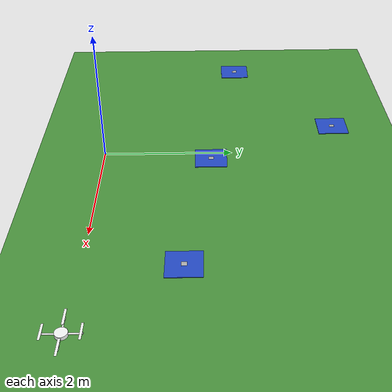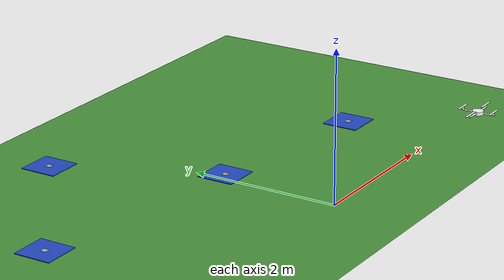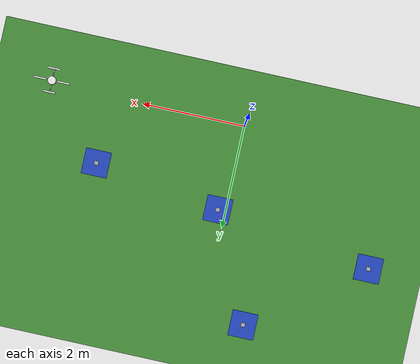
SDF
<sdf version="1.7">
 <world name="mrsim">
  <model name="ground_plane">
   <static>1</static>
   <link name="link">
    <collision name="collision">
     <geometry><plane><normal>0 0 1</normal><size>5000 5000</size></plane></geometry>
     <surface><friction><ode><mu>1</mu><mu2>1</mu2></ode></friction></surface>
    </collision>
    <visual name="grass">
     <cast_shadows>0</cast_shadows>
     <geometry><plane><normal>0 0 1</normal><size>5000 5000</size></plane></geometry>
     <material>
      <script><uri>file://media/materials/scripts/gazebo.material</uri><name>Gazebo/Grass</name></script>
     </material>
    </visual>
   </link>
  </model>
  <model name="quad2">
   <link name="base">
    <inertial>
     <mass>1</mass>
     <inertia><ixx>0.015</ixx><ixy>0</ixy><ixz>0</ixz><iyy>0.015</iyy><iyz>0</iyz><izz>0.007</izz></inertia>
    </inertial>
    <collision name="base">
     <geometry><cylinder><radius>0.1</radius><length>0.05</length></cylinder></geometry>
    </collision>
    <collision name="land_1">
     <pose>0.1 0 0 0 -0 0</pose>
     <geometry><sphere><radius>0.03</radius></sphere></geometry>
    </collision>
    <collision name="land_2">
     <pose>-0.05 0.086 0 0 -0 0</pose>
     <geometry><sphere><radius>0.03</radius></sphere></geometry>
    </collision>
    <collision name="land_3">
     <pose>-0.05 -0.086 0 0 -0 0</pose>
     <geometry><sphere><radius>0.03</radius></sphere></geometry>
    </collision>
    <visual name="body">
     <geometry><cylinder><radius>0.08</radius><length>0.05</length></cylinder></geometry>
     <material><ambient>1 0.6 0.4 1</ambient><diffuse>1 1 1 1</diffuse></material>
    </visual>
    <visual name="arm-1">
     <pose>0.125 0 0 3.14159 1.57079 3.14159</pose>
     <geometry><cylinder><radius>0.01</radius><length>0.25</length></cylinder></geometry>
     <material><ambient>1 0.4 0.4 1</ambient><diffuse>1 1 1 1</diffuse></material>
    </visual>
    <visual name="arm-2">
     <pose>0 0.125 0 3.14159 1.57079 -1.57079</pose>
     <geometry><cylinder><radius>0.01</radius><length>0.25</length></cylinder></geometry>
     <material><ambient>0.6 0.6 0.6 1</ambient><diffuse>1 1 1 1</diffuse></material>
    </visual>
    <visual name="arm-3">
     <pose>-0.125 0 0 3.14159 1.57079 3.14159</pose>
     <geometry><cylinder><radius>0.01</radius><length>0.25</length></cylinder></geometry>
     <material><ambient>0.6 0.6 0.6 1</ambient><diffuse>1 1 1 1</diffuse></material>
    </visual>
    <visual name="arm-4">
     <pose>0 -0.125 0 3.14159 1.57079 -1.57079</pose>
     <geometry><cylinder><radius>0.01</radius><length>0.25</length></cylinder></geometry>
     <material><ambient>0.6 0.6 0.6 1</ambient><diffuse>1 1 1 1</diffuse></material>
    </visual>
   </link>
   <frame name="rotor-1::__model__" attached_to="rotor-1::propeller">
    <pose relative_to="__model__">0.23 0 0 0 -0 0</pose>
   </frame>
   <link name="rotor-1::propeller">
    <inertial>
     <mass>0.07</mass>
     <inertia><ixx>4e-05</ixx><ixy>0</ixy><ixz>0</ixz><iyy>4e-05</iyy><iyz>0</iyz><izz>8e-05</izz></inertia>
    </inertial>
    <collision name="collision">
     <pose>0 0 0.04 0 -0 0</pose>
     <geometry><cylinder><radius>0.127</radius><length>0.002</length></cylinder></geometry>
    </collision>
    <visual name="motor">
     <pose>0 0 0.015 0 -0 0</pose>
     <geometry><cylinder><radius>0.015</radius><length>0.03</length></cylinder></geometry>
     <material><ambient>0.1 0.1 0.1 1</ambient><diffuse>1 1 1 1</diffuse></material>
    </visual>
    <visual name="axle">
     <pose>0 0 0.035 0 -0 0</pose>
     <geometry><cylinder><radius>0.002</radius><length>0.01</length></cylinder></geometry>
     <material><ambient>0.1 0.1 0.1 1</ambient><diffuse>1 1 1 1</diffuse></material>
    </visual>
    <visual name="blade">
     <pose>0 0 0.04 0 -0 0</pose>
     <geometry><box><size>0.25 0.03 0.002</size></box></geometry>
     <material><ambient>0.1 0.1 0.1 1</ambient><diffuse>1 1 1 1</diffuse></material>
    </visual>
    <pose relative_to="rotor-1::__model__">0 0 0 0 -0 0</pose>
   </link>
   <joint name="rotor-1" type="revolute">
    <parent>base</parent>
    <child>rotor-1::propeller</child>
    <axis>
     <xyz>0 0 1</xyz>
     <limit><lower>-1e+16</lower><upper>1e+16</upper></limit>
     <dynamics><spring_reference>0</spring_reference><spring_stiffness>0</spring_stiffness></dynamics>
    </axis>
   </joint>
   <frame name="rotor-2::__model__" attached_to="rotor-2::propeller">
    <pose relative_to="__model__">0 0.23 0 0 -0 0</pose>
   </frame>
   <link name="rotor-2::propeller">
    <inertial>
     <mass>0.07</mass>
     <inertia><ixx>4e-05</ixx><ixy>0</ixy><ixz>0</ixz><iyy>4e-05</iyy><iyz>0</iyz><izz>8e-05</izz></inertia>
    </inertial>
    <collision name="collision">
     <pose>0 0 0.04 0 -0 0</pose>
     <geometry><cylinder><radius>0.127</radius><length>0.002</length></cylinder></geometry>
    </collision>
    <visual name="motor">
     <pose>0 0 0.015 0 -0 0</pose>
     <geometry><cylinder><radius>0.015</radius><length>0.03</length></cylinder></geometry>
     <material><ambient>0.1 0.1 0.1 1</ambient><diffuse>1 1 1 1</diffuse></material>
    </visual>
    <visual name="axle">
     <pose>0 0 0.035 0 -0 0</pose>
     <geometry><cylinder><radius>0.002</radius><length>0.01</length></cylinder></geometry>
     <material><ambient>0.1 0.1 0.1 1</ambient><diffuse>1 1 1 1</diffuse></material>
    </visual>
    <visual name="blade">
     <pose>0 0 0.04 0 -0 0</pose>
     <geometry><box><size>0.25 0.03 0.002</size></box></geometry>
     <material><ambient>0.1 0.1 0.1 1</ambient><diffuse>1 1 1 1</diffuse></material>
    </visual>
    <pose relative_to="rotor-2::__model__">0 0 0 0 -0 0</pose>
   </link>
   <joint name="rotor-2" type="revolute">
    <parent>base</parent>
    <child>rotor-2::propeller</child>
    <axis>
     <xyz>0 0 1</xyz>
     <limit><lower>-1e+16</lower><upper>1e+16</upper></limit>
     <dynamics><spring_reference>0</spring_reference><spring_stiffness>0</spring_stiffness></dynamics>
    </axis>
   </joint>
   <frame name="rotor-3::__model__" attached_to="rotor-3::propeller">
    <pose relative_to="__model__">-0.23 0 0 0 -0 0</pose>
   </frame>
   <link name="rotor-3::propeller">
    <inertial>
     <mass>0.07</mass>
     <inertia><ixx>4e-05</ixx><ixy>0</ixy><ixz>0</ixz><iyy>4e-05</iyy><iyz>0</iyz><izz>8e-05</izz></inertia>
    </inertial>
    <collision name="collision">
     <pose>0 0 0.04 0 -0 0</pose>
     <geometry><cylinder><radius>0.127</radius><length>0.002</length></cylinder></geometry>
    </collision>
    <visual name="motor">
     <pose>0 0 0.015 0 -0 0</pose>
     <geometry><cylinder><radius>0.015</radius><length>0.03</length></cylinder></geometry>
     <material><ambient>0.1 0.1 0.1 1</ambient><diffuse>1 1 1 1</diffuse></material>
    </visual>
    <visual name="axle">
     <pose>0 0 0.035 0 -0 0</pose>
     <geometry><cylinder><radius>0.002</radius><length>0.01</length></cylinder></geometry>
     <material><ambient>0.1 0.1 0.1 1</ambient><diffuse>1 1 1 1</diffuse></material>
    </visual>
    <visual name="blade">
     <pose>0 0 0.04 0 -0 0</pose>
     <geometry><box><size>0.25 0.03 0.002</size></box></geometry>
     <material><ambient>0.1 0.1 0.1 1</ambient><diffuse>1 1 1 1</diffuse></material>
    </visual>
    <pose relative_to="rotor-3::__model__">0 0 0 0 -0 0</pose>
   </link>
   <joint name="rotor-3" type="revolute">
    <parent>base</parent>
    <child>rotor-3::propeller</child>
    <axis>
     <xyz>0 0 1</xyz>
     <limit><lower>-1e+16</lower><upper>1e+16</upper></limit>
     <dynamics><spring_reference>0</spring_reference><spring_stiffness>0</spring_stiffness></dynamics>
    </axis>
   </joint>
   <frame name="rotor-4::__model__" attached_to="rotor-4::propeller">
    <pose relative_to="__model__">0 -0.23 0 0 -0 0</pose>
   </frame>
   <link name="rotor-4::propeller">
    <inertial>
     <mass>0.07</mass>
     <inertia><ixx>4e-05</ixx><ixy>0</ixy><ixz>0</ixz><iyy>4e-05</iyy><iyz>0</iyz><izz>8e-05</izz></inertia>
    </inertial>
    <collision name="collision">
     <pose>0 0 0.04 0 -0 0</pose>
     <geometry><cylinder><radius>0.127</radius><length>0.002</length></cylinder></geometry>
    </collision>
    <visual name="motor">
     <pose>0 0 0.015 0 -0 0</pose>
     <geometry><cylinder><radius>0.015</radius><length>0.03</length></cylinder></geometry>
     <material><ambient>0.1 0.1 0.1 1</ambient><diffuse>1 1 1 1</diffuse></material>
    </visual>
    <visual name="axle">
     <pose>0 0 0.035 0 -0 0</pose>
     <geometry><cylinder><radius>0.002</radius><length>0.01</length></cylinder></geometry>
     <material><ambient>0.1 0.1 0.1 1</ambient><diffuse>1 1 1 1</diffuse></material>
    </visual>
    <visual name="blade">
     <pose>0 0 0.04 0 -0 0</pose>
     <geometry><box><size>0.25 0.03 0.002</size></box></geometry>
     <material><ambient>0.1 0.1 0.1 1</ambient><diffuse>1 1 1 1</diffuse></material>
    </visual>
    <pose relative_to="rotor-4::__model__">0 0 0 0 -0 0</pose>
   </link>
   <joint name="rotor-4" type="revolute">
    <parent>base</parent>
    <child>rotor-4::propeller</child>
    <axis>
     <xyz>0 0 1</xyz>
     <limit><lower>-1e+16</lower><upper>1e+16</upper></limit>
     <dynamics><spring_reference>0</spring_reference><spring_stiffness>0</spring_stiffness></dynamics>
    </axis>
   </joint>
   <link name="down_camera_link">
    <pose>0 0 0 3.14159 1.57079 3.14159</pose>
    <inertial>
     <mass>0.001</mass>
     <inertia>
      <ixx>3.2061e-05</ixx>
      <ixy>-1.169e-08</ixy>
      <ixz>-4.2601e-10</ixz>
      <iyy>3.0815e-05</iyy>
      <iyz>5.2182e-10</iyz>
      <izz>5.1652e-06</izz>
     </inertia>
    </inertial>
    <visual name="down_camera_visual">
     <geometry><cylinder><radius>0.02</radius><length>0.04</length></cylinder></geometry>
     <material><ambient>0.1 0.1 0.1 1</ambient><diffuse>1 1 1 1</diffuse></material>
    </visual>
    <sensor name="down_camera" type="camera">
     <camera>
      <horizontal_fov>1.2</horizontal_fov>
      <image><format>R8G8B8</format><width>640</width><height>480</height></image>
      <clip><near>0.05</near><far>15000</far></clip>
     </camera>
     <always_on>1</always_on>
     <update_rate>10</update_rate>
    </sensor>
   </link>
   <joint name="down_camera_joint" type="fixed">
    <child>down_camera_link</child>
    <parent>base</parent>
    <axis><xyz>1 0 0</xyz><limit><lower>-1e+16</lower><upper>1e+16</upper></limit></axis>
   </joint>
   <plugin name="mrsim" filename="mrsim-gazebo.so">
    <link>base</link>
    <rotors>
     <noise>0.03</noise>
     <cf>6.5e-4</cf>
     <ct>1e-5</ct>
     <rotor><joint spin="cw">rotor-1</joint></rotor>
     <rotor><joint spin="ccw">rotor-2</joint></rotor>
     <rotor><joint spin="cw">rotor-3</joint></rotor>
     <rotor><joint spin="ccw">rotor-4</joint></rotor>
    </rotors>
   </plugin>
   <pose>3.79908 -0.06151 0.029996 -3e-06 -3.6e-05 -0.003111</pose>
  </model>
  <model name="blue_box_1">
   <link name="plate">
    <collision name="collision">
     <geometry><box><size>0.5 0.5 0.01</size></box></geometry>
     <surface><friction><ode><mu>0</mu><mu2>0</mu2></ode></friction></surface>
    </collision>
    <visual name="visual">
     <geometry><box><size>0.5 0.5 0.01</size></box></geometry>
     <material>
      <script><uri>file://media/materials/scripts/gazebo.material</uri><name>Gazebo/Blue</name></script>
     </material>
    </visual>
    <inertial>
     <inertia><ixx>1</ixx><ixy>0</ixy><ixz>0</ixz><iyy>1</iyy><iyz>0</iyz><izz>1</izz></inertia>
     <mass>1</mass>
    </inertial>
    <velocity>0 0 0 0 -0 0</velocity>
    <acceleration>-0.004713 -9.7911 9.79156 0.732639 -0.009423 -4.3e-05</acceleration>
    <wrench>-0.004713 -9.7911 9.79156 0 -0 0</wrench>
   </link>
   <frame name="aruco_6X6_250_10::__model__" attached_to="aruco_6X6_250_10::tag">
    <pose relative_to="__model__">0 0 0.005 0 -0 0</pose>
   </frame>
   <link name="aruco_6X6_250_10::tag">
    <gravity>0</gravity>
    <inertial>
     <mass>0.001</mass>
     <inertia><ixx>1e-05</ixx><ixy>0</ixy><ixz>0</ixz><iyy>1e-05</iyy><iyz>0</iyz><izz>1e-05</izz></inertia>
    </inertial>
    <visual name="front">
     <pose>0 0 0 0 -0 1.57075</pose>
     <geometry><box><size>0.077143 0.077143 0.0005</size></box></geometry>
     <material>
      <script>
       <uri>model://aruco_6X6_250_10/materials/scripts</uri>
       <uri>model://aruco_6X6_250_10/materials/textures</uri>
       <name>aruco_6X6_250_10/Marker</name>
      </script>
     </material>
    </visual>
    <visual name="back">
     <pose>0 0 -0.001 0 -0 1.57075</pose>
     <geometry><box><size>0.077143 0.077143 0.001</size></box></geometry>
     <material><ambient>0 0 0 1</ambient><diffuse>0 0 0 1</diffuse></material>
    </visual>
    <pose relative_to="aruco_6X6_250_10::__model__">0 0 0 0 -0 0</pose>
   </link>
   <joint name="aruco_6X6_250_10_joint" type="fixed">
    <parent>plate</parent>
    <child>aruco_6X6_250_10::tag</child>
   </joint>
   <static>1</static>
   <pose>0.150614 1.67484 0 0 -0 0</pose>
  </model>
  <model name="blue_box_2">
   <link name="plate">
    <collision name="collision">
     <geometry><box><size>0.5 0.5 0.01</size></box></geometry>
     <surface><friction><ode><mu>0</mu><mu2>0</mu2></ode></friction></surface>
    </collision>
    <visual name="visual">
     <geometry><box><size>0.5 0.5 0.01</size></box></geometry>
     <material>
      <script><uri>file://media/materials/scripts/gazebo.material</uri><name>Gazebo/Blue</name></script>
     </material>
    </visual>
    <inertial>
     <inertia><ixx>1</ixx><ixy>0</ixy><ixz>0</ixz><iyy>1</iyy><iyz>0</iyz><izz>1</izz></inertia>
     <mass>1</mass>
    </inertial>
    <velocity>0 0 0 0 -0 0</velocity>
    <acceleration>-0.004713 -9.7911 9.79156 0.732639 -0.009423 -4.3e-05</acceleration>
    <wrench>-0.004713 -9.7911 9.79156 0 -0 0</wrench>
   </link>
   <frame name="aruco_6X6_250_10::__model__" attached_to="aruco_6X6_250_10::tag">
    <pose relative_to="__model__">0 0 0.005 0 -0 0</pose>
   </frame>
   <link name="aruco_6X6_250_10::tag">
    <gravity>0</gravity>
    <inertial>
     <mass>0.001</mass>
     <inertia><ixx>1e-05</ixx><ixy>0</ixy><ixz>0</ixz><iyy>1e-05</iyy><iyz>0</iyz><izz>1e-05</izz></inertia>
    </inertial>
    <visual name="front">
     <pose>0 0 0 0 -0 1.57075</pose>
     <geometry><box><size>0.077143 0.077143 0.0005</size></box></geometry>
     <material>
      <script>
       <uri>model://aruco_6X6_250_10/materials/scripts</uri>
       <uri>model://aruco_6X6_250_10/materials/textures</uri>
       <name>aruco_6X6_250_10/Marker</name>
      </script>
     </material>
    </visual>
    <visual name="back">
     <pose>0 0 -0.001 0 -0 1.57075</pose>
     <geometry><box><size>0.077143 0.077143 0.001</size></box></geometry>
     <material><ambient>0 0 0 1</ambient><diffuse>0 0 0 1</diffuse></material>
    </visual>
    <pose relative_to="aruco_6X6_250_10::__model__">0 0 0 0 -0 0</pose>
   </link>
   <joint name="aruco_6X6_250_10_joint" type="fixed">
    <parent>plate</parent>
    <child>aruco_6X6_250_10::tag</child>
   </joint>
   <static>1</static>
   <pose>-2.92188 2.16068 0 0 -0 0</pose>
  </model>
  <model name="blue_box_3">
   <link name="plate">
    <collision name="collision">
     <geometry><box><size>0.5 0.5 0.01</size></box></geometry>
     <surface><friction><ode><mu>0</mu><mu2>0</mu2></ode></friction></surface>
    </collision>
    <visual name="visual">
     <geometry><box><size>0.5 0.5 0.01</size></box></geometry>
     <material>
      <script><uri>file://media/materials/scripts/gazebo.material</uri><name>Gazebo/Blue</name></script>
     </material>
    </visual>
    <inertial>
     <inertia><ixx>1</ixx><ixy>0</ixy><ixz>0</ixz><iyy>1</iyy><iyz>0</iyz><izz>1</izz></inertia>
     <mass>1</mass>
    </inertial>
    <velocity>0 0 0 0 -0 0</velocity>
    <acceleration>-0.004713 -9.7911 9.79156 0.732639 -0.009423 -4.3e-05</acceleration>
    <wrench>-0.004713 -9.7911 9.79156 0 -0 0</wrench>
   </link>
   <frame name="aruco_6X6_250_10::__model__" attached_to="aruco_6X6_250_10::tag">
    <pose relative_to="__model__">0 0 0.005 0 -0 0</pose>
   </frame>
   <link name="aruco_6X6_250_10::tag">
    <gravity>0</gravity>
    <inertial>
     <mass>0.001</mass>
     <inertia><ixx>1e-05</ixx><ixy>0</ixy><ixz>0</ixz><iyy>1e-05</iyy><iyz>0</iyz><izz>1e-05</izz></inertia>
    </inertial>
    <visual name="front">
     <pose>0 0 0 0 -0 1.57075</pose>
     <geometry><box><size>0.077143 0.077143 0.0005</size></box></geometry>
     <material>
      <script>
       <uri>model://aruco_6X6_250_10/materials/scripts</uri>
       <uri>model://aruco_6X6_250_10/materials/textures</uri>
       <name>aruco_6X6_250_10/Marker</name>
      </script>
     </material>
    </visual>
    <visual name="back">
     <pose>0 0 -0.001 0 -0 1.57075</pose>
     <geometry><box><size>0.077143 0.077143 0.001</size></box></geometry>
     <material><ambient>0 0 0 1</ambient><diffuse>0 0 0 1</diffuse></material>
    </visual>
    <pose relative_to="aruco_6X6_250_10::__model__">0 0 0 0 -0 0</pose>
   </link>
   <joint name="aruco_6X6_250_10_joint" type="fixed">
    <parent>plate</parent>
    <child>aruco_6X6_250_10::tag</child>
   </joint>
   <static>1</static>
   <pose>-0.798547 3.72918 0 0 -0 0</pose>
  </model>
  <model name="blue_box_4">
   <link name="plate">
    <collision name="collision">
     <geometry><box><size>0.5 0.5 0.01</size></box></geometry>
     <surface><friction><ode><mu>0</mu><mu2>0</mu2></ode></friction></surface>
    </collision>
    <visual name="visual">
     <geometry><box><size>0.5 0.5 0.01</size></box></geometry>
     <material>
      <script><uri>file://media/materials/scripts/gazebo.material</uri><name>Gazebo/Blue</name></script>
     </material>
    </visual>
    <inertial>
     <inertia><ixx>1</ixx><ixy>0</ixy><ixz>0</ixz><iyy>1</iyy><iyz>0</iyz><izz>1</izz></inertia>
     <mass>1</mass>
    </inertial>
    <velocity>0 0 0 0 -0 0</velocity>
    <acceleration>-0.004713 -9.7911 9.79156 0.732639 -0.009423 -4.3e-05</acceleration>
    <wrench>-0.004713 -9.7911 9.79156 0 -0 0</wrench>
   </link>
   <frame name="aruco_6X6_250_10::__model__" attached_to="aruco_6X6_250_10::tag">
    <pose relative_to="__model__">0 0 0.005 0 -0 0</pose>
   </frame>
   <link name="aruco_6X6_250_10::tag">
    <gravity>0</gravity>
    <inertial>
     <mass>0.001</mass>
     <inertia><ixx>1e-05</ixx><ixy>0</ixy><ixz>0</ixz><iyy>1e-05</iyy><iyz>0</iyz><izz>1e-05</izz></inertia>
    </inertial>
    <visual name="front">
     <pose>0 0 0 0 -0 1.57075</pose>
     <geometry><box><size>0.077143 0.077143 0.0005</size></box></geometry>
     <material>
      <script>
       <uri>model://aruco_6X6_250_10/materials/scripts</uri>
       <uri>model://aruco_6X6_250_10/materials/textures</uri>
       <name>aruco_6X6_250_10/Marker</name>
      </script>
     </material>
    </visual>
    <visual name="back">
     <pose>0 0 -0.001 0 -0 1.57075</pose>
     <geometry><box><size>0.077143 0.077143 0.001</size></box></geometry>
     <material><ambient>0 0 0 1</ambient><diffuse>0 0 0 1</diffuse></material>
    </visual>
    <pose relative_to="aruco_6X6_250_10::__model__">0 0 0 0 -0 0</pose>
   </link>
   <joint name="aruco_6X6_250_10_joint" type="fixed">
    <parent>plate</parent>
    <child>aruco_6X6_250_10::tag</child>
   </joint>
   <static>1</static>
   <pose>2.62859 1.30132 0 0 -0 0</pose>
  </model>
 </world>
</sdf>
